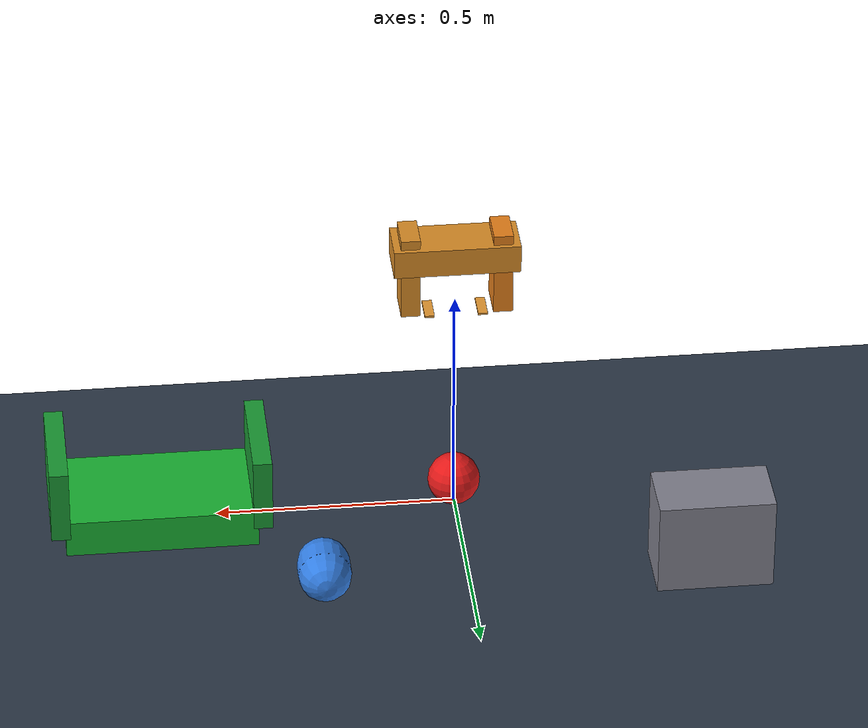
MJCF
<mujoco model="muscle_gripper">
  <compiler angle="radian"/>
  <option timestep="0.002" integrator="Euler" iterations="1000" tolerance="1e-6" cone="pyramidal" gravity="0 0 -9.81">
    <flag contact="enable" equality="enable" limit="enable" frictionloss="disable"/>
  </option>
  <asset>
    <texture name="floor_grid" type="2d" builtin="checker" rgb1="0.12 0.15 0.20" rgb2="0.22 0.28 0.35" width="512" height="512"/>
    <material name="floor_material" texture="floor_grid" texrepeat="8 8" reflectance="0.1"/>
  </asset>
  <worldbody>
    <light directional="true" pos="0 -2 5" dir="0 0.3 -1" diffuse="0.9 0.9 0.9" specular="0.3 0.3 0.3"/>

    <geom material="floor_material" name="floor" type="plane" size="5 5 0.1" pos="0 0 0" condim="1" priority="1" contype="1" conaffinity="0"/>
    <body name="pedestal" pos="-0.5 0.3 0">
      <geom name="pedestal_geom" type="box" size="0.12 0.07 0.1" pos="0 0 0.1" rgba="0.5 0.5 0.55 1" mass="0" contype="1" conaffinity="0" condim="3"/>
    </body>
    <body name="bin" pos="0.62 0 0">
      <geom name="bin_geom" type="box" size="0.20 0.12 0.04" pos="0 0 0.04" rgba="0.1 0.7 0.2 1" mass="0" condim="1" priority="1" contype="1" conaffinity="0"/>
      <geom name="wallL_geom" type="box" size="0.02 0.12 0.08" pos="-0.21 0 0.12" rgba="0.1 0.6 0.2 1" mass="0" contype="1" conaffinity="0" condim="3"/>
      <geom name="wallR_geom" type="box" size="0.02 0.12 0.08" pos="0.21 0 0.12" rgba="0.1 0.6 0.2 1" mass="0" contype="1" conaffinity="0" condim="3"/>
    </body>
    <body name="gantry" pos="0 0 0.62" mocap="true">
      <geom name="palm_geom" type="box" size="0.13 0.05 0.03" rgba="0.85 0.55 0.15 1" mass="0.3" friction="2.0 0.05 0.02" contype="1" conaffinity="0" condim="3"/>
      <body name="fingerL" pos="-0.095 0 -0.02">
        <joint name="gripL" type="slide" axis="-1 0 0" limited="true" range="-0.018 0.04" damping="8.0" solreflimit="0.003 1"/>
        <geom name="fingerL_geom" type="box" size="0.02 0.04 0.09" pos="0 0 -0.02" rgba="0.9 0.5 0.1 1" mass="0.15" friction="2.0 0.05 0.02" contype="1" conaffinity="0" condim="3"/>
        <geom name="ledgeL" type="box" size="0.01 0.03 0.002" pos="0.04 0 -0.12" mass="0" contype="1" conaffinity="0" rgba="0.9 0.6 0.2 1"/>
      </body>
      <body name="fingerR" pos="0.095 0 -0.02">
        <joint name="gripR" type="slide" axis="1 0 0" limited="true" range="-0.018 0.04" damping="8.0" solreflimit="0.003 1"/>
        <geom name="fingerR_geom" type="box" size="0.02 0.04 0.09" pos="0 0 -0.02" rgba="0.85 0.55 0.15 1" mass="0.15" friction="2.0 0.05 0.02" contype="1" conaffinity="0" condim="3"/>
        <geom name="ledgeR" type="box" size="0.01 0.03 0.002" pos="-0.04 0 -0.12" mass="0" contype="1" conaffinity="0" rgba="0.9 0.6 0.2 1"/>
      </body>
    </body>
    <body name="ball" pos="0 0 0.055">
      <freejoint name="ball_free"/>
      <geom name="ball_geom" type="sphere" size="0.055" rgba="0.9 0.1 0.1 1" mass="0.02" friction="2.0 0.05 0.02" contype="1" conaffinity="0" condim="3"/>
    </body>
    <body name="ball2" pos="0.3 0.3 0.055">
      <freejoint name="ball2_free"/>
      <geom name="ball2_geom" type="capsule" size="0.055 0.02" quat="0.7071067811865476 0.7071067811865476 0 0" rgba="0.2 0.5 0.9 1" mass="0.02" friction="2.0 0.05 0.02" contype="1" conaffinity="0" condim="3"/>
    </body>
  </worldbody>
  <contact>
    <pair solref="0.006 1" solimp="0.95 0.99 0.001" geom1="ball2_geom" geom2="ledgeR"/>
    <pair solref="0.006 1" solimp="0.95 0.99 0.001" geom1="ball_geom" geom2="ledgeR"/>
    <pair solref="0.006 1" solimp="0.95 0.99 0.001" geom1="ball2_geom" geom2="ledgeL"/>
    <pair solref="0.006 1" solimp="0.95 0.99 0.001" geom1="ball_geom" geom2="ledgeL"/>
    <pair solref="0.006 1" solimp="0.95 0.99 0.001" geom1="ball_geom" geom2="fingerL_geom"/>
    <pair solref="0.006 1" solimp="0.95 0.99 0.001" geom1="ball_geom" geom2="palm_geom"/>
    <pair solref="0.006 1" solimp="0.95 0.99 0.001" geom1="ball2_geom" geom2="palm_geom"/>
    <pair solref="0.006 1" solimp="0.95 0.99 0.001" geom1="ball_geom" geom2="fingerR_geom"/>
    <pair solref="0.006 1" solimp="0.95 0.99 0.001" geom1="ball_geom" geom2="bin_geom" condim="4"/>
    <pair solref="0.006 1" solimp="0.95 0.99 0.001" geom1="ball_geom" geom2="wallL_geom"/>
    <pair solref="0.006 1" solimp="0.95 0.99 0.001" geom1="ball_geom" geom2="wallR_geom"/>
    <pair solref="0.006 1" solimp="0.95 0.99 0.001" geom1="ball2_geom" geom2="fingerL_geom"/>
    <pair solref="0.006 1" solimp="0.95 0.99 0.001" geom1="ball2_geom" geom2="fingerR_geom"/>
    <pair solref="0.006 1" solimp="0.95 0.99 0.001" geom1="ball2_geom" geom2="floor"/>
    <pair solref="0.006 1" solimp="0.95 0.99 0.001" geom1="ball2_geom" geom2="pedestal_geom" condim="6" friction="1 1 0.005 0.02 0.02"/>
    <pair solref="0.006 1" solimp="0.95 0.99 0.001" geom1="ball_geom" geom2="floor"/>
  </contact>
  <actuator>
    <general joint="gripL" dyntype="muscle" dynprm="0.01 0.04 0.01" gaintype="muscle" gainprm="0.6 1.4 2 2 0.5 1.5 1 1 1.2 0" biastype="muscle" biasprm="0.6 1.4 2 2 0.5 1.5 1 1 1.2 0" lengthrange="-0.6 0.6" gear="1" ctrllimited="true" ctrlrange="0 1"/>
    <general joint="gripL" dyntype="muscle" dynprm="0.01 0.04 0.01" gaintype="muscle" gainprm="0.6 1.4 2 2 0.5 1.5 1 1 1.2 0" biastype="muscle" biasprm="0.6 1.4 2 2 0.5 1.5 1 1 1.2 0" lengthrange="-0.6 0.6" gear="-1" ctrllimited="true" ctrlrange="0 1"/>
    <general joint="gripR" dyntype="muscle" dynprm="0.01 0.04 0.01" gaintype="muscle" gainprm="0.6 1.4 2 2 0.5 1.5 1 1 1.2 0" biastype="muscle" biasprm="0.6 1.4 2 2 0.5 1.5 1 1 1.2 0" lengthrange="-0.6 0.6" gear="1" ctrllimited="true" ctrlrange="0 1"/>
    <general joint="gripR" dyntype="muscle" dynprm="0.01 0.04 0.01" gaintype="muscle" gainprm="0.6 1.4 2 2 0.5 1.5 1 1 1.2 0" biastype="muscle" biasprm="0.6 1.4 2 2 0.5 1.5 1 1 1.2 0" lengthrange="-0.6 0.6" gear="-1" ctrllimited="true" ctrlrange="0 1"/>
  </actuator>
  <keyframe>
    <key name="start" qpos="0.04 0.04 0 0 0.055 1 0 0 0 0.3 0.3 0.055 1 0 0 0" mpos="0 0 0.62" mquat="1 0 0 0" act="0 0 0 0"/>
  </keyframe>
</mujoco>
